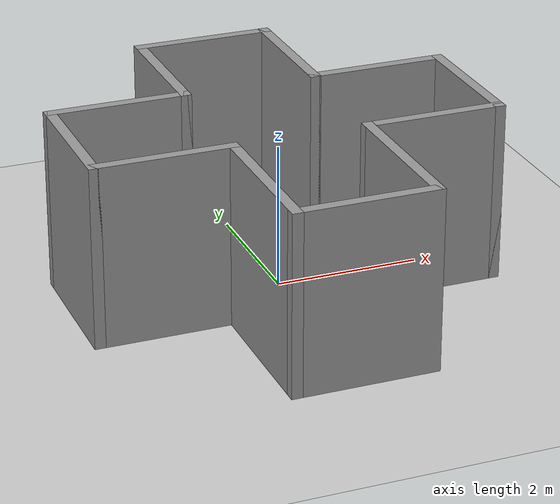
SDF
<sdf version="1.6">
 <world name="default">
  <light name="sun" type="directional">
   <pose>0 0 10 0 -0 0</pose>
   <diffuse>0.8 0.8 0.8 1</diffuse>
   <specular>0.2 0.2 0.2 1</specular>
   <attenuation>
    <range>1000</range>
    <constant>0.9</constant>
    <linear>0.01</linear>
    <quadratic>0.001</quadratic>
   </attenuation>
   <direction>-0.5 0.1 -0.9</direction>
  </light>
  <model name="ground_plane">
   <static>1</static>
   <link name="link">
    <collision name="collision">
     <geometry><plane><normal>0 0 1</normal><size>100 100</size></plane></geometry>
     <surface>
      <contact><collide_bitmask>65535</collide_bitmask></contact>
      <friction><ode><mu>100</mu><mu2>50</mu2></ode></friction>
     </surface>
    </collision>
    <visual name="visual">
     <cast_shadows>0</cast_shadows>
     <geometry><plane><normal>0 0 1</normal><size>100 100</size></plane></geometry>
     <material>
      <script><uri>file://media/materials/scripts/gazebo.material</uri><name>Gazebo/Grey</name></script>
     </material>
    </visual>
   </link>
  </model>
  <gravity>0 0 -9.8</gravity>
  <magnetic_field>6e-06 2.3e-05 -4.2e-05</magnetic_field>
  <atmosphere type="adiabatic"/>
  <physics name="default_physics" default="0" type="ode">
   <max_step_size>0.001</max_step_size>
   <real_time_factor>1</real_time_factor>
   <real_time_update_rate>1000</real_time_update_rate>
  </physics>
  <scene><ambient>0.4 0.4 0.4 1</ambient><background>0.7 0.7 0.7 1</background><shadows>1</shadows></scene>
  <spherical_coordinates>
   <surface_model>EARTH_WGS84</surface_model>
   <latitude_deg>0</latitude_deg>
   <longitude_deg>0</longitude_deg>
   <elevation>0</elevation>
   <heading_deg>0</heading_deg>
  </spherical_coordinates>
  <model name="train_ma_01">
   <link name="Wall_0">
    <collision name="Wall_0_Collision">
     <geometry><box><size>2 0.15 2.5</size></box></geometry>
     <pose>0 0 1.25 0 -0 0</pose>
    </collision>
    <visual name="Wall_0_Visual">
     <pose>0 0 1.25 0 -0 0</pose>
     <geometry><box><size>2 0.15 2.5</size></box></geometry>
     <material>
      <script><uri>file://media/materials/scripts/gazebo.material</uri><name>Gazebo/Grey</name></script>
      <ambient>1 1 1 1</ambient>
     </material>
     <meta><layer>0</layer></meta>
    </visual>
    <pose>-2.775 0.125 0 0 0 -1.5708</pose>
   </link>
   <link name="Wall_10">
    <collision name="Wall_10_Collision">
     <geometry><box><size>2 0.15 2.5</size></box></geometry>
     <pose>0 0 1.25 0 -0 0</pose>
    </collision>
    <visual name="Wall_10_Visual">
     <pose>0 0 1.25 0 -0 0</pose>
     <geometry><box><size>2 0.15 2.5</size></box></geometry>
     <material>
      <script><uri>file://media/materials/scripts/gazebo.material</uri><name>Gazebo/Grey</name></script>
      <ambient>1 1 1 1</ambient>
     </material>
     <meta><layer>0</layer></meta>
    </visual>
    <pose>0 -2.9 0 0 -0 3.14159</pose>
   </link>
   <link name="Wall_11">
    <collision name="Wall_11_Collision">
     <geometry><box><size>2.25 0.15 2.5</size></box></geometry>
     <pose>0 0 1.25 0 -0 0</pose>
    </collision>
    <visual name="Wall_11_Visual">
     <pose>0 0 1.25 0 -0 0</pose>
     <geometry><box><size>2.25 0.15 2.5</size></box></geometry>
     <material>
      <script><uri>file://media/materials/scripts/gazebo.material</uri><name>Gazebo/Grey</name></script>
      <ambient>1 1 1 1</ambient>
     </material>
     <meta><layer>0</layer></meta>
    </visual>
    <pose>-0.925 -1.85 0 0 -0 1.5708</pose>
   </link>
   <link name="Wall_13">
    <collision name="Wall_13_Collision">
     <geometry><box><size>2 0.15 2.5</size></box></geometry>
     <pose>0 0 1.25 0 -0 0</pose>
    </collision>
    <visual name="Wall_13_Visual">
     <pose>0 0 1.25 0 -0 0</pose>
     <geometry><box><size>2 0.15 2.5</size></box></geometry>
     <material>
      <script><uri>file://media/materials/scripts/gazebo.material</uri><name>Gazebo/Grey</name></script>
      <ambient>1 1 1 1</ambient>
     </material>
     <meta><layer>0</layer></meta>
    </visual>
    <pose>-1.85 -0.8 0 0 -0 0</pose>
   </link>
   <link name="Wall_15">
    <collision name="Wall_15_Collision">
     <geometry><box><size>2 0.15 2.5</size></box></geometry>
     <pose>0 0 1.25 0 -0 0</pose>
    </collision>
    <visual name="Wall_15_Visual">
     <pose>0 0 1.25 0 -0 0</pose>
     <geometry><box><size>2 0.15 2.5</size></box></geometry>
     <material>
      <script><uri>file://media/materials/scripts/gazebo.material</uri><name>Gazebo/Grey</name></script>
      <ambient>1 1 1 1</ambient>
     </material>
     <meta><layer>0</layer></meta>
    </visual>
    <pose>1.85 -0.8 0 0 -0 0</pose>
   </link>
   <link name="Wall_17">
    <collision name="Wall_17_Collision">
     <geometry><box><size>2 0.15 2.5</size></box></geometry>
     <pose>0 0 1.25 0 -0 0</pose>
    </collision>
    <visual name="Wall_17_Visual">
     <pose>0 0 1.25 0 -0 0</pose>
     <geometry><box><size>2 0.15 2.5</size></box></geometry>
     <material>
      <script><uri>file://media/materials/scripts/gazebo.material</uri><name>Gazebo/Grey</name></script>
      <ambient>1 1 1 1</ambient>
     </material>
     <meta><layer>0</layer></meta>
    </visual>
    <pose>1.85 1.05 0 0 -0 0</pose>
   </link>
   <link name="Wall_2">
    <collision name="Wall_2_Collision">
     <geometry><box><size>2 0.15 2.5</size></box></geometry>
     <pose>0 0 1.25 0 -0 0</pose>
    </collision>
    <visual name="Wall_2_Visual">
     <pose>0 0 1.25 0 -0 0</pose>
     <geometry><box><size>2 0.15 2.5</size></box></geometry>
     <material>
      <script><uri>file://media/materials/scripts/gazebo.material</uri><name>Gazebo/Grey</name></script>
      <ambient>1 1 1 1</ambient>
     </material>
     <meta><layer>0</layer></meta>
    </visual>
    <pose>2.775 0.125 0 0 -0 1.5708</pose>
   </link>
   <link name="Wall_4">
    <collision name="Wall_4_Collision">
     <geometry><box><size>2 0.15 2.5</size></box></geometry>
     <pose>0 0 1.25 0 -0 0</pose>
    </collision>
    <visual name="Wall_4_Visual">
     <pose>0 0 1.25 0 -0 0</pose>
     <geometry><box><size>2 0.15 2.5</size></box></geometry>
     <material>
      <script><uri>file://media/materials/scripts/gazebo.material</uri><name>Gazebo/Grey</name></script>
      <ambient>1 1 1 1</ambient>
     </material>
     <meta><layer>0</layer></meta>
    </visual>
    <pose>-1.85 1.05 0 0 -0 0</pose>
   </link>
   <link name="Wall_5">
    <collision name="Wall_5_Collision">
     <geometry><box><size>2 0.15 2.5</size></box></geometry>
     <pose>0 0 1.25 0 -0 0</pose>
    </collision>
    <visual name="Wall_5_Visual">
     <pose>0 0 1.25 0 -0 0</pose>
     <geometry><box><size>2 0.15 2.5</size></box></geometry>
     <material>
      <script><uri>file://media/materials/scripts/gazebo.material</uri><name>Gazebo/Grey</name></script>
      <ambient>1 1 1 1</ambient>
     </material>
     <meta><layer>0</layer></meta>
    </visual>
    <pose>-0.925 1.975 0 0 -0 1.5708</pose>
   </link>
   <link name="Wall_6">
    <collision name="Wall_6_Collision">
     <geometry><box><size>2 0.15 2.5</size></box></geometry>
     <pose>0 0 1.25 0 -0 0</pose>
    </collision>
    <visual name="Wall_6_Visual">
     <pose>0 0 1.25 0 -0 0</pose>
     <geometry><box><size>2 0.15 2.5</size></box></geometry>
     <material>
      <script><uri>file://media/materials/scripts/gazebo.material</uri><name>Gazebo/Grey</name></script>
      <ambient>1 1 1 1</ambient>
     </material>
     <meta><layer>0</layer></meta>
    </visual>
    <pose>0 2.9 0 0 -0 0</pose>
   </link>
   <link name="Wall_7">
    <collision name="Wall_7_Collision">
     <geometry><box><size>2 0.15 2.5</size></box></geometry>
     <pose>0 0 1.25 0 -0 0</pose>
    </collision>
    <visual name="Wall_7_Visual">
     <pose>0 0 1.25 0 -0 0</pose>
     <geometry><box><size>2 0.15 2.5</size></box></geometry>
     <material>
      <script><uri>file://media/materials/scripts/gazebo.material</uri><name>Gazebo/Grey</name></script>
      <ambient>1 1 1 1</ambient>
     </material>
     <meta><layer>0</layer></meta>
    </visual>
    <pose>0.925 1.975 0 0 0 -1.5708</pose>
   </link>
   <link name="Wall_9">
    <collision name="Wall_9_Collision">
     <geometry><box><size>2.25 0.15 2.5</size></box></geometry>
     <pose>0 0 1.25 0 -0 0</pose>
    </collision>
    <visual name="Wall_9_Visual">
     <pose>0 0 1.25 0 -0 0</pose>
     <geometry><box><size>2.25 0.15 2.5</size></box></geometry>
     <material>
      <script><uri>file://media/materials/scripts/gazebo.material</uri><name>Gazebo/Grey</name></script>
      <ambient>1 1 1 1</ambient>
     </material>
     <meta><layer>0</layer></meta>
    </visual>
    <pose>0.925 -1.85 0 0 0 -1.5708</pose>
   </link>
   <static>1</static>
  </model>
 </world>
</sdf>
